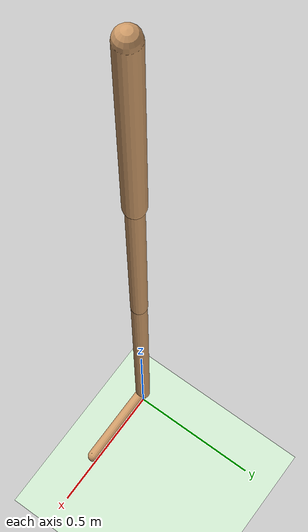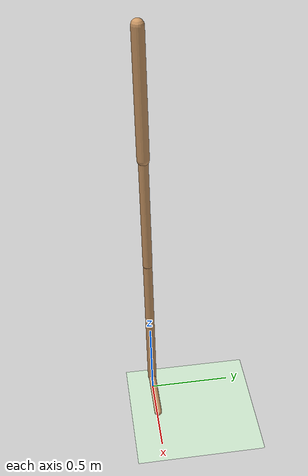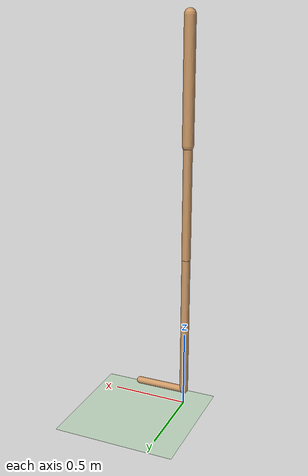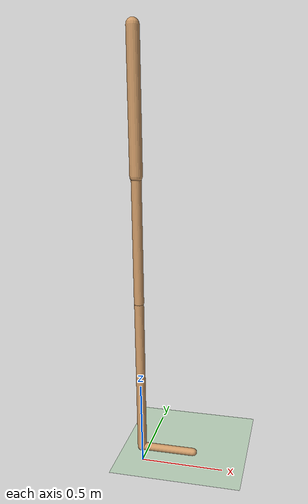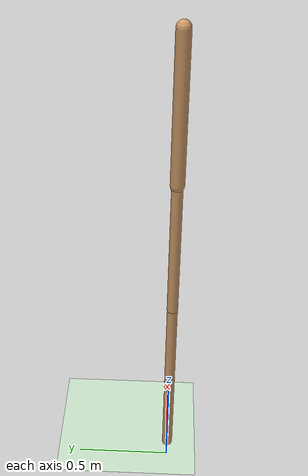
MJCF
<mujoco model="walker2d">
  <compiler angle="degree" inertiafromgeom="true" />
  <default>
    <joint armature="0.01" damping=".1" limited="true" />
    <geom conaffinity="0" condim="3" contype="1" density="1000" friction=".7 .1 .1" rgba="0.8 0.6 .4 1" />
  </default>
  <option integrator="RK4" timestep="0.002" />
  <worldbody>
    <light cutoff="100" diffuse="1 1 1" dir="-0 0 -1.3" directional="true" exponent="1" pos="0 0 1.3" specular=".1 .1 .1" />
    <geom conaffinity="1" condim="3" name="floor" pos="0 0 0" rgba="0.8 0.9 0.8 1" size="40 40 40" type="plane" material="MatPlane" />
    <body name="torso" pos="0 0 2.1382496118545533">
      <camera name="track" mode="trackcom" pos="0 -5 -1.25" xyaxes="1 0 0 0 0 1" />
      <joint armature="0" axis="1 0 0" damping="0" limited="false" name="rootx" pos="0 0 -1.25" stiffness="0" type="slide" />
      <joint armature="0" axis="0 0 1" damping="0" limited="false" name="rootz" pos="0 0 -1.25" ref="1.25" stiffness="0" type="slide" />
      <joint armature="0" axis="0 1 0" damping="0" limited="false" name="rooty" pos="0 0 0" stiffness="0" type="hinge" />
      <geom friction="0.9" name="torso_geom" size="0.03575192391872406 0.3816761374473572" type="capsule" />
      <body name="thigh" pos="0 0 -0.3816761374473572">
        <joint axis="0 -1 0" name="thigh_joint" pos="0 0 0" range="-150 0" type="hinge" />
        <site name="torso_thigh_site" pos="0 0 0" size="0.01" type="sphere" rgba="1 0 0 0.5" />
        <geom friction="0.9" pos="0 0 -0.36351656913757324" name="thigh_geom" size="0.02854613959789276 0.36351656913757324" type="capsule" />
        <body name="leg" pos="0 0 -1.1918033063411713">
          <joint axis="0 -1 0" name="leg_joint" pos="0 0 0.4647701680660248" range="-150 0" type="hinge" />
          <site name="thigh_leg_site" pos="0 0 0.25" size="0.01" type="sphere" rgba="1 0 0 0.5" />
          <geom friction="0.9" name="leg_geom" size="0.027433596551418304 0.4647701680660248" type="capsule" />
          <body name="foot" pos="0.3205941319465637 0 -0.5647701680660248">
            <joint axis="0 -1 0" name="foot_joint" pos="-0.3205941319465637 0 0.1" range="-45 45" type="hinge" />
            <site name="leg_foot_site" pos="-0.2 0 0.1" size="0.01" type="sphere" rgba="1 0 0 0.5" />
            <geom friction="0.9" pos="-0.16029706597328186 0 0.1" quat="0.70710678118654757 0 -0.70710678118654746 0" name="foot_geom" size="0.022898539900779724 0.16029706597328186" type="capsule" />
          </body>
        </body>
      </body>

      <body name="thigh_left" pos="0 0 -0.3816761374473572">
        <joint axis="0 -1 0" name="thigh_left_joint" pos="0 0 0" range="-150 0" type="hinge" />
        <site name="torso_thigh_left_site" pos="0 0 0" size="0.01" type="sphere" rgba="1 0 0 0.5" />
        <geom friction="0.9" name="thigh_left_geom" rgba=".7 .3 .6 1" size="0.02854613959789276 0.36351656913757324" pos="0 0 -0.36351656913757324" type="capsule" />
        <body name="leg_left" pos="0 0 -1.1918033063411713">
          <joint axis="0 -1 0" name="leg_left_joint" pos="0 0 0.4647701680660248" range="-150 0" type="hinge" />
          <site name="thigh_leg_left_site" pos="0 0 0.25" size="0.01" type="sphere" rgba="1 0 0 0.5" />
          <geom friction="0.9" name="leg_left_geom" rgba=".7 .3 .6 1" size="0.027433596551418304 0.4647701680660248" type="capsule" />
          <body name="foot_left" pos="0.3205941319465637 0 -0.5647701680660248">
            <joint axis="0 -1 0" name="foot_left_joint" pos="-0.3205941319465637 0 0.1" range="-45 45" type="hinge" />
            <site name="leg_foot_left_site" pos="-0.2 0 0.1" size="0.01" type="sphere" rgba="1 0 0 0.5" />
            <geom friction="1.9" name="foot_left_geom" rgba=".7 .3 .6 1" size="0.022898539900779724 0.16029706597328186" pos="-0.16029706597328186 0 0.1" type="capsule" quat="0.70710678118654757 0 -0.70710678118654746 0" />
          </body>
        </body>
      </body>
    </body>
  </worldbody>
  <actuator>

    <motor ctrllimited="true" ctrlrange="-1.0 1.0" gear="52.66189157927883" joint="thigh_joint" />
    <motor ctrllimited="true" ctrlrange="-1.0 1.0" gear="87.44676503955179" joint="leg_joint" />
    <motor ctrllimited="true" ctrlrange="-1.0 1.0" gear="23.347407010039102" joint="foot_joint" />
    <motor ctrllimited="true" ctrlrange="-1.0 1.0" gear="52.66189157927883" joint="thigh_left_joint" />
    <motor ctrllimited="true" ctrlrange="-1.0 1.0" gear="87.44676503955179" joint="leg_left_joint" />
    <motor ctrllimited="true" ctrlrange="-1.0 1.0" gear="23.347407010039102" joint="foot_left_joint" />

  </actuator>
    <asset>
        <texture type="skybox" builtin="gradient" rgb1=".4 .5 .6" rgb2="0 0 0" width="100" height="100" />
        <texture builtin="flat" height="1278" mark="cross" markrgb="1 1 1" name="texgeom" random="0.01" rgb1="0.8 0.6 0.4" rgb2="0.8 0.6 0.4" type="cube" width="127" />
        <texture builtin="checker" height="100" name="texplane" rgb1="0 0 0" rgb2="0.8 0.8 0.8" type="2d" width="100" />
        <material name="MatPlane" reflectance="0.5" shininess="1" specular="1" texrepeat="60 60" texture="texplane" />
        <material name="geom" texture="texgeom" texuniform="true" />
    </asset>

  <sensor>
    <force site="torso_thigh_site" name="torso_thigh_sensor" />
    <force site="thigh_leg_site" name="thigh_leg_sensor" />
    <force site="leg_foot_site" name="leg_foot_sensor" />
    <force site="torso_thigh_left_site" name="torso_thigh_left_sensor" />
    <force site="thigh_leg_left_site" name="thigh_leg_left_sensor" />
    <force site="leg_foot_left_site" name="leg_foot_left_sensor" />
  </sensor>
</mujoco>
